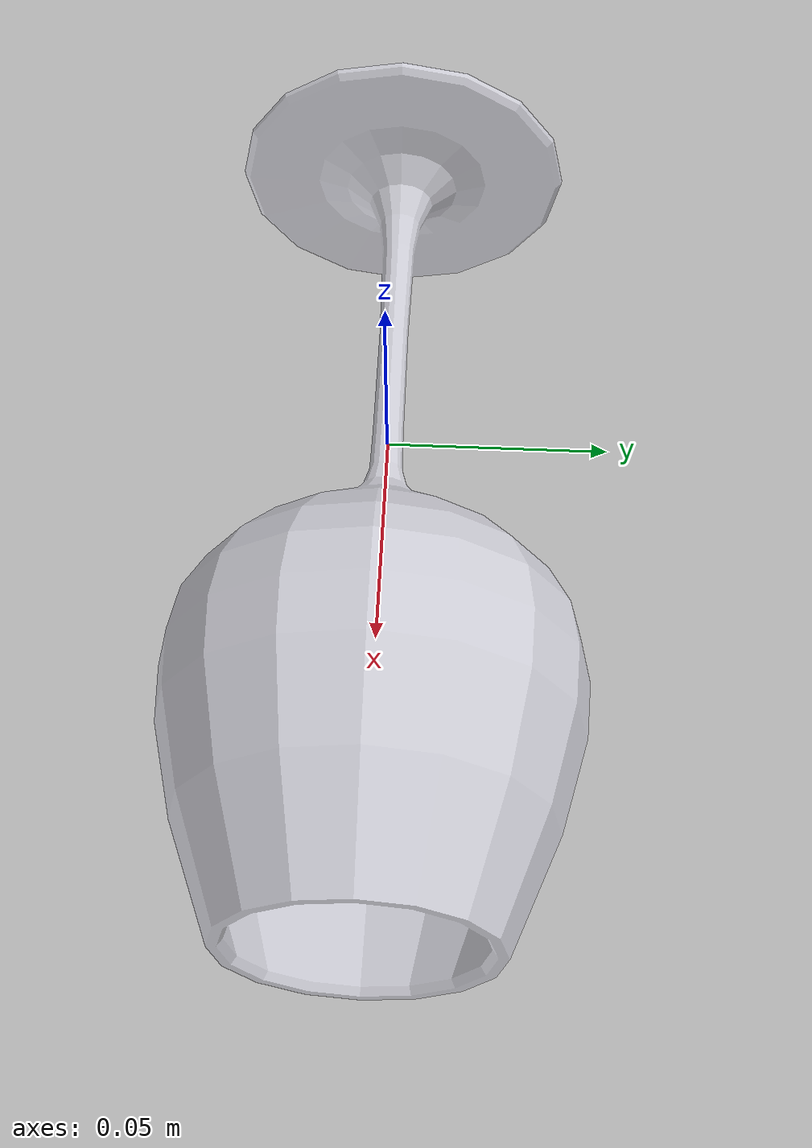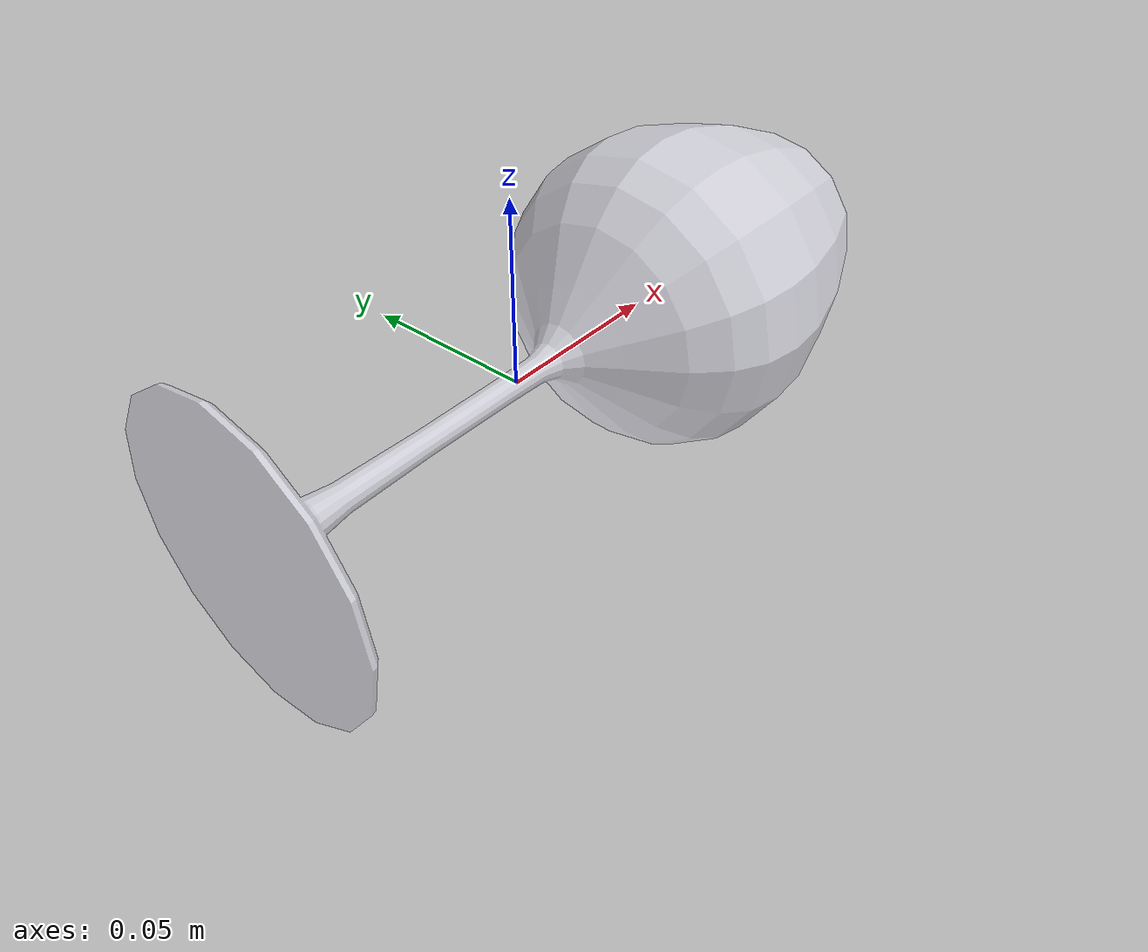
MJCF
<?xml version="1.0" encoding="utf-8"?>
<mujoco model="wine_glass">
  <compiler angle="radian" meshdir="assets" texturedir="assets" autolimits="true"/>
  <asset>
    <material name="wine_glass" specular="0.8" shininess="0.5" rgba="0.9 0.9 0.95 0.7"/>
    <mesh file="wine_glass.obj"/>
    <mesh file="wine_glass_collision_001.obj"/>
    <mesh file="wine_glass_collision_002.obj"/>
    <mesh file="wine_glass_collision_003.obj"/>
    <mesh file="wine_glass_collision_004.obj"/>
    <mesh file="wine_glass_collision_005.obj"/>
    <mesh file="wine_glass_collision_006.obj"/>
    <mesh file="wine_glass_collision_007.obj"/>
    <mesh file="wine_glass_collision_008.obj"/>
    <mesh file="wine_glass_collision_009.obj"/>
    <mesh file="wine_glass_collision_010.obj"/>
    <mesh file="wine_glass_collision_011.obj"/>
    <mesh file="wine_glass_collision_012.obj"/>
    <mesh file="wine_glass_collision_013.obj"/>
    <mesh file="wine_glass_collision_014.obj"/>
    <mesh file="wine_glass_collision_015.obj"/>
    <mesh file="wine_glass_collision_016.obj"/>
    <mesh file="wine_glass_collision_017.obj"/>
    <mesh file="wine_glass_collision_018.obj"/>
    <mesh file="wine_glass_collision_019.obj"/>
    <mesh file="wine_glass_collision_020.obj"/>
    <mesh file="wine_glass_collision_021.obj"/>
    <mesh file="wine_glass_collision_022.obj"/>
    <mesh file="wine_glass_collision_023.obj"/>
    <mesh file="wine_glass_collision_024.obj"/>
    <mesh file="wine_glass_collision_025.obj"/>
    <mesh file="wine_glass_collision_026.obj"/>
    <mesh file="wine_glass_collision_027.obj"/>
    <mesh file="wine_glass_collision_028.obj"/>
    <mesh file="wine_glass_collision_029.obj"/>
    <mesh file="wine_glass_collision_030.obj"/>
    <mesh file="wine_glass_collision_031.obj"/>
    <mesh file="wine_glass_collision_032.obj"/>
    <mesh file="wine_glass_collision_033.obj"/>
    <mesh file="wine_glass_collision_034.obj"/>
    <mesh file="wine_glass_collision_035.obj"/>
    <mesh file="wine_glass_collision_036.obj"/>
    <mesh file="wine_glass_collision_037.obj"/>
    <mesh file="wine_glass_collision_038.obj"/>
    <mesh file="wine_glass_collision_039.obj"/>
    <mesh file="wine_glass_collision_040.obj"/>
    <mesh file="wine_glass_collision_041.obj"/>
    <mesh file="wine_glass_collision_042.obj"/>
  </asset>
  <default>
    <default class="wine_glass">
      <default class="visual">
        <geom type="mesh" contype="0" conaffinity="0" group="2" material="wine_glass"/>
      </default>
      <default class="collision">
        <geom type="mesh" group="3" density="1000" solimp="0.98 0.99 0.001" solref="0.004 1"/>
      </default>
      <geom pos="-0.08 0 0" euler="-1.57 0 -1.57"/>
    </default>
  </default>
  <worldbody>
    <body name="wine_glass" childclass="wine_glass">
      <geom name="mesh" mesh="wine_glass" class="visual"/>
      <geom name="collider_001" mesh="wine_glass_collision_001" class="collision"/>
      <geom name="collider_002" mesh="wine_glass_collision_002" class="collision"/>
      <geom name="collider_003" mesh="wine_glass_collision_003" class="collision"/>
      <geom name="collider_004" mesh="wine_glass_collision_004" class="collision"/>
      <geom name="collider_005" mesh="wine_glass_collision_005" class="collision"/>
      <geom name="collider_006" mesh="wine_glass_collision_006" class="collision"/>
      <geom name="collider_007" mesh="wine_glass_collision_007" class="collision"/>
      <geom name="collider_008" mesh="wine_glass_collision_008" class="collision"/>
      <geom name="collider_009" mesh="wine_glass_collision_009" class="collision"/>
      <geom name="collider_010" mesh="wine_glass_collision_010" class="collision"/>
      <geom name="collider_011" mesh="wine_glass_collision_011" class="collision"/>
      <geom name="collider_012" mesh="wine_glass_collision_012" class="collision"/>
      <geom name="collider_013" mesh="wine_glass_collision_013" class="collision"/>
      <geom name="collider_014" mesh="wine_glass_collision_014" class="collision"/>
      <geom name="collider_015" mesh="wine_glass_collision_015" class="collision"/>
      <geom name="collider_016" mesh="wine_glass_collision_016" class="collision"/>
      <geom name="collider_017" mesh="wine_glass_collision_017" class="collision"/>
      <geom name="collider_018" mesh="wine_glass_collision_018" class="collision"/>
      <geom name="collider_019" mesh="wine_glass_collision_019" class="collision"/>
      <geom name="collider_020" mesh="wine_glass_collision_020" class="collision"/>
      <geom name="collider_021" mesh="wine_glass_collision_021" class="collision"/>
      <geom name="collider_022" mesh="wine_glass_collision_022" class="collision"/>
      <geom name="collider_023" mesh="wine_glass_collision_023" class="collision"/>
      <geom name="collider_024" mesh="wine_glass_collision_024" class="collision"/>
      <geom name="collider_025" mesh="wine_glass_collision_025" class="collision"/>
      <geom name="collider_026" mesh="wine_glass_collision_026" class="collision"/>
      <geom name="collider_027" mesh="wine_glass_collision_027" class="collision"/>
      <geom name="collider_028" mesh="wine_glass_collision_028" class="collision"/>
      <geom name="collider_029" mesh="wine_glass_collision_029" class="collision"/>
      <geom name="collider_030" mesh="wine_glass_collision_030" class="collision"/>
      <geom name="collider_031" mesh="wine_glass_collision_031" class="collision"/>
      <geom name="collider_032" mesh="wine_glass_collision_032" class="collision"/>
      <geom name="collider_033" mesh="wine_glass_collision_033" class="collision"/>
      <geom name="collider_034" mesh="wine_glass_collision_034" class="collision"/>
      <geom name="collider_035" mesh="wine_glass_collision_035" class="collision"/>
      <geom name="collider_036" mesh="wine_glass_collision_036" class="collision"/>
      <geom name="collider_037" mesh="wine_glass_collision_037" class="collision"/>
      <geom name="collider_038" mesh="wine_glass_collision_038" class="collision"/>
      <geom name="collider_039" mesh="wine_glass_collision_039" class="collision"/>
      <geom name="collider_040" mesh="wine_glass_collision_040" class="collision"/>
      <geom name="collider_041" mesh="wine_glass_collision_041" class="collision"/>
      <geom name="collider_042" mesh="wine_glass_collision_042" class="collision"/>
    </body>
  </worldbody>
</mujoco>
